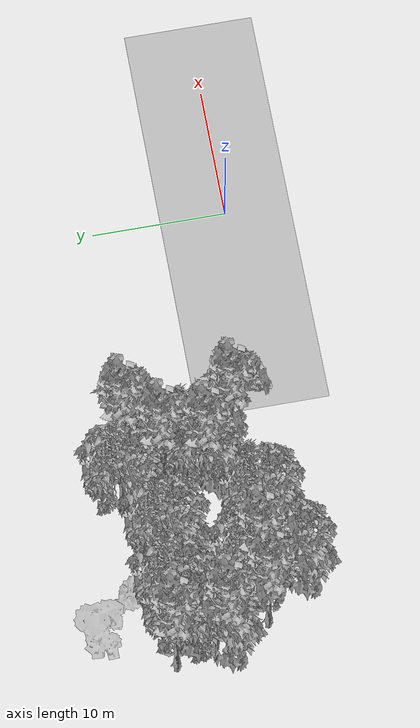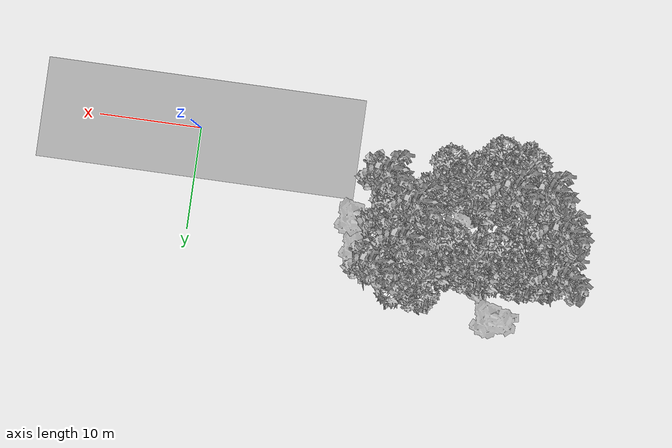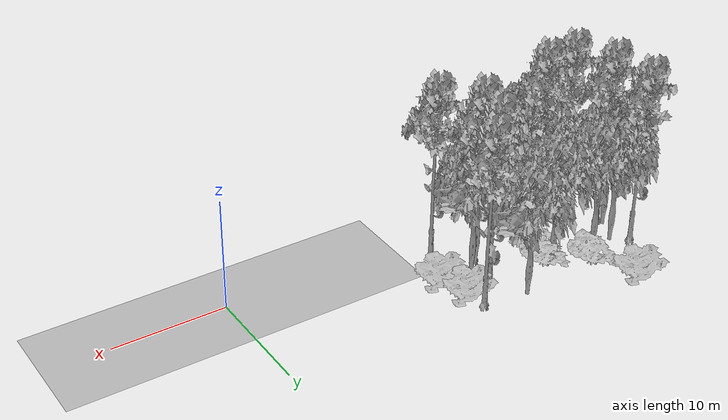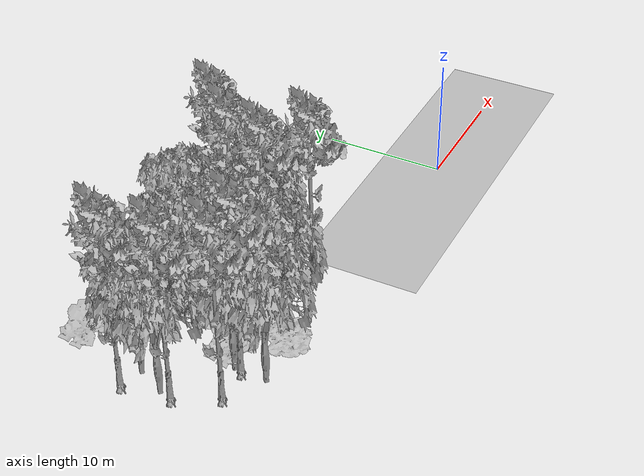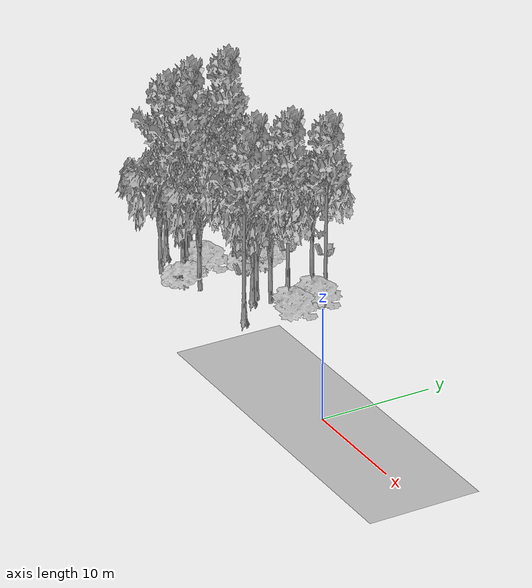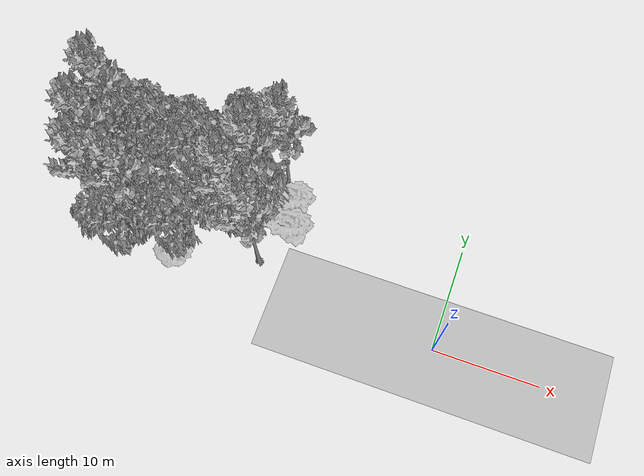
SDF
<sdf version="1.7">
 <world name="default">
  <model name="ground_plane">
   <static>1</static>
   <link name="link">
    <collision name="collision">
     <pose>-50 0 0 0 -0 0</pose>
     <geometry><plane><normal>0 0 1</normal><size>100 100</size></plane></geometry>
     <surface><contact><ode><min_depth>0.01</min_depth><max_vel>0</max_vel></ode></contact></surface>
    </collision>
    <visual name="grass">
     <cast_shadows>0</cast_shadows>
     <geometry>
      <mesh>
       <scale>0.5814285714285714 0.18142857142857144 0.1</scale>
       <uri>file://grass_plane/meshes/grass_plane.dae</uri>
      </mesh>
     </geometry>
    </visual>
   </link>
  </model>
  <model name="Tree 6">
   <static>1</static>
   <pose>-17.15751394996521 9.124569294484395 0 1.57079 -0 0</pose>
   <link name="link">
    <collision name="collision">
     <geometry><mesh><scale>3 2 3</scale><uri>model://tree_3/meshes/tree_3.obj</uri></mesh></geometry>
    </collision>
    <visual name="visual">
     <geometry><mesh><scale>3 2 3</scale><uri>model://tree_3/meshes/tree_3.obj</uri></mesh></geometry>
    </visual>
   </link>
  </model>
  <model name="Tree 7">
   <static>1</static>
   <pose>-20.042771031521408 8.194792321414138 0 1.57079 -0 0</pose>
   <link name="link">
    <collision name="collision">
     <geometry><mesh><scale>3.5 5 3.5</scale><uri>model://tree_9/meshes/tree_9.obj</uri></mesh></geometry>
    </collision>
    <visual name="visual">
     <geometry><mesh><scale>3.5 5 3.5</scale><uri>model://tree_9/meshes/tree_9.obj</uri></mesh></geometry>
    </visual>
   </link>
  </model>
  <model name="Tree 10">
   <static>1</static>
   <pose>-24.68343236074492 2.107477035243388 0 1.57079 -0 0</pose>
   <link name="link">
    <collision name="collision">
     <geometry><mesh><scale>3.5 5 3.5</scale><uri>model://tree_2/meshes/tree_2.obj</uri></mesh></geometry>
    </collision>
    <visual name="visual">
     <geometry><mesh><scale>3.5 5 3.5</scale><uri>model://tree_2/meshes/tree_2.obj</uri></mesh></geometry>
    </visual>
   </link>
  </model>
  <model name="Tree 13">
   <static>1</static>
   <pose>-25.75330304576824 7.535871364246212 0 1.57079 -0 0</pose>
   <link name="link">
    <collision name="collision">
     <geometry><mesh><scale>4 2.5 4</scale><uri>model://tree_1/meshes/tree_1.obj</uri></mesh></geometry>
    </collision>
    <visual name="visual">
     <geometry><mesh><scale>4 2.5 4</scale><uri>model://tree_1/meshes/tree_1.obj</uri></mesh></geometry>
    </visual>
   </link>
  </model>
  <model name="Tree 27">
   <static>1</static>
   <pose>-30.72963443361177 14.336017798661647 0 1.57079 -0 0</pose>
   <link name="link">
    <collision name="collision">
     <geometry><mesh><scale>3 2 3</scale><uri>model://tree_3/meshes/tree_3.obj</uri></mesh></geometry>
    </collision>
    <visual name="visual">
     <geometry><mesh><scale>3 2 3</scale><uri>model://tree_3/meshes/tree_3.obj</uri></mesh></geometry>
    </visual>
   </link>
  </model>
  <model name="Tree 41">
   <static>1</static>
   <pose>-20.740241400400702 5.128102294444851 0 1.57079 -0 0</pose>
   <link name="link">
    <collision name="collision">
     <geometry><mesh><scale>3.5 5 3.5</scale><uri>model://tree_9/meshes/tree_9.obj</uri></mesh></geometry>
    </collision>
    <visual name="visual">
     <geometry><mesh><scale>3.5 5 3.5</scale><uri>model://tree_9/meshes/tree_9.obj</uri></mesh></geometry>
    </visual>
   </link>
  </model>
  <model name="Tree 45">
   <static>1</static>
   <pose>-31.895953584344646 2.6722823539387335 0 1.57079 -0 0</pose>
   <link name="link">
    <collision name="collision">
     <geometry><mesh><scale>3.5 5 3.5</scale><uri>model://tree_9/meshes/tree_9.obj</uri></mesh></geometry>
    </collision>
    <visual name="visual">
     <geometry><mesh><scale>3.5 5 3.5</scale><uri>model://tree_9/meshes/tree_9.obj</uri></mesh></geometry>
    </visual>
   </link>
  </model>
  <model name="Tree 57">
   <static>1</static>
   <pose>-25.301051002393145 8.82444766177425 0 1.57079 -0 0</pose>
   <link name="link">
    <collision name="collision">
     <geometry><mesh><scale>4 2.5 4</scale><uri>model://tree_1/meshes/tree_1.obj</uri></mesh></geometry>
    </collision>
    <visual name="visual">
     <geometry><mesh><scale>4 2.5 4</scale><uri>model://tree_1/meshes/tree_1.obj</uri></mesh></geometry>
    </visual>
   </link>
  </model>
  <model name="Tree 59">
   <static>1</static>
   <pose>-30.230970148976617 9.219024627274305 0 1.57079 -0 0</pose>
   <link name="link">
    <collision name="collision">
     <geometry><mesh><scale>3.5 5 3.5</scale><uri>model://tree_2/meshes/tree_2.obj</uri></mesh></geometry>
    </collision>
    <visual name="visual">
     <geometry><mesh><scale>3.5 5 3.5</scale><uri>model://tree_2/meshes/tree_2.obj</uri></mesh></geometry>
    </visual>
   </link>
  </model>
  <model name="Tree 64">
   <static>1</static>
   <pose>-17.94208284096476 2.7646160359075758 0 1.57079 -0 0</pose>
   <link name="link">
    <collision name="collision">
     <geometry><mesh><scale>3.5 5 3.5</scale><uri>model://tree_9/meshes/tree_9.obj</uri></mesh></geometry>
    </collision>
    <visual name="visual">
     <geometry><mesh><scale>3.5 5 3.5</scale><uri>model://tree_9/meshes/tree_9.obj</uri></mesh></geometry>
    </visual>
   </link>
  </model>
  <model name="Tree 67">
   <static>1</static>
   <pose>-28.813274689700332 10.81522901101296 0 1.57079 -0 0</pose>
   <link name="link">
    <collision name="collision">
     <geometry><mesh><scale>4 2.5 4</scale><uri>model://tree_1/meshes/tree_1.obj</uri></mesh></geometry>
    </collision>
    <visual name="visual">
     <geometry><mesh><scale>4 2.5 4</scale><uri>model://tree_1/meshes/tree_1.obj</uri></mesh></geometry>
    </visual>
   </link>
  </model>
  <model name="Tree 96">
   <static>1</static>
   <pose>-25.869145309513254 9.138523277299456 0 1.57079 -0 0</pose>
   <link name="link">
    <collision name="collision">
     <geometry><mesh><scale>3.5 5 3.5</scale><uri>model://tree_2/meshes/tree_2.obj</uri></mesh></geometry>
    </collision>
    <visual name="visual">
     <geometry><mesh><scale>3.5 5 3.5</scale><uri>model://tree_2/meshes/tree_2.obj</uri></mesh></geometry>
    </visual>
   </link>
  </model>
  <model name="Tree 104">
   <static>1</static>
   <pose>-16.375782150070606 6.433516202311974 0 1.57079 -0 0</pose>
   <link name="link">
    <collision name="collision">
     <geometry><mesh><scale>3 2 3</scale><uri>model://tree_3/meshes/tree_3.obj</uri></mesh></geometry>
    </collision>
    <visual name="visual">
     <geometry><mesh><scale>3 2 3</scale><uri>model://tree_3/meshes/tree_3.obj</uri></mesh></geometry>
    </visual>
   </link>
  </model>
  <model name="Tree 113">
   <static>1</static>
   <pose>-28.978532575788144 2.80263356643826 0 1.57079 -0 0</pose>
   <link name="link">
    <collision name="collision">
     <geometry><mesh><scale>3.5 5 3.5</scale><uri>model://tree_9/meshes/tree_9.obj</uri></mesh></geometry>
    </collision>
    <visual name="visual">
     <geometry><mesh><scale>3.5 5 3.5</scale><uri>model://tree_9/meshes/tree_9.obj</uri></mesh></geometry>
    </visual>
   </link>
  </model>
  <model name="Tree 114">
   <static>1</static>
   <pose>-21.5354030112173 11.402265313494183 0 1.57079 -0 0</pose>
   <link name="link">
    <collision name="collision">
     <geometry><mesh><scale>3.5 5 3.5</scale><uri>model://tree_2/meshes/tree_2.obj</uri></mesh></geometry>
    </collision>
    <visual name="visual">
     <geometry><mesh><scale>3.5 5 3.5</scale><uri>model://tree_2/meshes/tree_2.obj</uri></mesh></geometry>
    </visual>
   </link>
  </model>
  <model name="Tree 118">
   <static>1</static>
   <pose>-33.53068250956952 5.854941752597245 0 1.57079 -0 0</pose>
   <link name="link">
    <collision name="collision">
     <geometry><mesh><scale>3.5 5 3.5</scale><uri>model://tree_9/meshes/tree_9.obj</uri></mesh></geometry>
    </collision>
    <visual name="visual">
     <geometry><mesh><scale>3.5 5 3.5</scale><uri>model://tree_9/meshes/tree_9.obj</uri></mesh></geometry>
    </visual>
   </link>
  </model>
  <model name="Tree 153">
   <static>1</static>
   <pose>-33.95880735276562 9.703318201726432 0 1.57079 -0 0</pose>
   <link name="link">
    <collision name="collision">
     <geometry><mesh><scale>3.5 5 3.5</scale><uri>model://tree_9/meshes/tree_9.obj</uri></mesh></geometry>
    </collision>
    <visual name="visual">
     <geometry><mesh><scale>3.5 5 3.5</scale><uri>model://tree_9/meshes/tree_9.obj</uri></mesh></geometry>
    </visual>
   </link>
  </model>
  <model name="Tree 166">
   <static>1</static>
   <pose>-27.795564326288208 3.9996713576095964 0 1.57079 -0 0</pose>
   <link name="link">
    <collision name="collision">
     <geometry><mesh><scale>3 2 3</scale><uri>model://tree_3/meshes/tree_3.obj</uri></mesh></geometry>
    </collision>
    <visual name="visual">
     <geometry><mesh><scale>3 2 3</scale><uri>model://tree_3/meshes/tree_3.obj</uri></mesh></geometry>
    </visual>
   </link>
  </model>
  <model name="Tree 179">
   <static>1</static>
   <pose>-20.677931214766385 5.467223435572446 0 1.57079 -0 0</pose>
   <link name="link">
    <collision name="collision">
     <geometry><mesh><scale>3.5 5 3.5</scale><uri>model://tree_2/meshes/tree_2.obj</uri></mesh></geometry>
    </collision>
    <visual name="visual">
     <geometry><mesh><scale>3.5 5 3.5</scale><uri>model://tree_2/meshes/tree_2.obj</uri></mesh></geometry>
    </visual>
   </link>
  </model>
  <model name="Tree 185">
   <static>1</static>
   <pose>-17.752082900019957 10.583534466812946 0 1.57079 -0 0</pose>
   <link name="link">
    <collision name="collision">
     <geometry><mesh><scale>3.5 5 3.5</scale><uri>model://tree_9/meshes/tree_9.obj</uri></mesh></geometry>
    </collision>
    <visual name="visual">
     <geometry><mesh><scale>3.5 5 3.5</scale><uri>model://tree_9/meshes/tree_9.obj</uri></mesh></geometry>
    </visual>
   </link>
  </model>
  <model name="Tree 227">
   <static>1</static>
   <pose>-33.463315474891516 6.760736184267863 0 1.57079 -0 0</pose>
   <link name="link">
    <collision name="collision">
     <geometry><mesh><scale>3.5 5 3.5</scale><uri>model://tree_2/meshes/tree_2.obj</uri></mesh></geometry>
    </collision>
    <visual name="visual">
     <geometry><mesh><scale>3.5 5 3.5</scale><uri>model://tree_2/meshes/tree_2.obj</uri></mesh></geometry>
    </visual>
   </link>
  </model>
  <model name="Tree 249">
   <static>1</static>
   <pose>-29.09539084853685 3.277209960487159 0 1.57079 -0 0</pose>
   <link name="link">
    <collision name="collision">
     <geometry><mesh><scale>3.5 5 3.5</scale><uri>model://tree_2/meshes/tree_2.obj</uri></mesh></geometry>
    </collision>
    <visual name="visual">
     <geometry><mesh><scale>3.5 5 3.5</scale><uri>model://tree_2/meshes/tree_2.obj</uri></mesh></geometry>
    </visual>
   </link>
  </model>
  <model name="Tree 272">
   <static>1</static>
   <pose>-32.33102659881578 8.996888374088737 0 1.57079 -0 0</pose>
   <link name="link">
    <collision name="collision">
     <geometry><mesh><scale>3.5 5 3.5</scale><uri>model://tree_2/meshes/tree_2.obj</uri></mesh></geometry>
    </collision>
    <visual name="visual">
     <geometry><mesh><scale>3.5 5 3.5</scale><uri>model://tree_2/meshes/tree_2.obj</uri></mesh></geometry>
    </visual>
   </link>
  </model>
  <model name="Tree 276">
   <static>1</static>
   <pose>-19.68097048070574 6.269554951710475 0 1.57079 -0 0</pose>
   <link name="link">
    <collision name="collision">
     <geometry><mesh><scale>3.5 5 3.5</scale><uri>model://tree_2/meshes/tree_2.obj</uri></mesh></geometry>
    </collision>
    <visual name="visual">
     <geometry><mesh><scale>3.5 5 3.5</scale><uri>model://tree_2/meshes/tree_2.obj</uri></mesh></geometry>
    </visual>
   </link>
  </model>
  <model name="Tree 298">
   <static>1</static>
   <pose>-25.866761641487994 1.1699647133804305 0 1.57079 -0 0</pose>
   <link name="link">
    <collision name="collision">
     <geometry><mesh><scale>4 2.5 4</scale><uri>model://tree_1/meshes/tree_1.obj</uri></mesh></geometry>
    </collision>
    <visual name="visual">
     <geometry><mesh><scale>4 2.5 4</scale><uri>model://tree_1/meshes/tree_1.obj</uri></mesh></geometry>
    </visual>
   </link>
  </model>
  <model name="Tree 299">
   <static>1</static>
   <pose>-29.18218588200787 0.6936348160463197 0 1.57079 -0 0</pose>
   <link name="link">
    <collision name="collision">
     <geometry><mesh><scale>3.5 5 3.5</scale><uri>model://tree_2/meshes/tree_2.obj</uri></mesh></geometry>
    </collision>
    <visual name="visual">
     <geometry><mesh><scale>3.5 5 3.5</scale><uri>model://tree_2/meshes/tree_2.obj</uri></mesh></geometry>
    </visual>
   </link>
  </model>
 </world>
</sdf>
